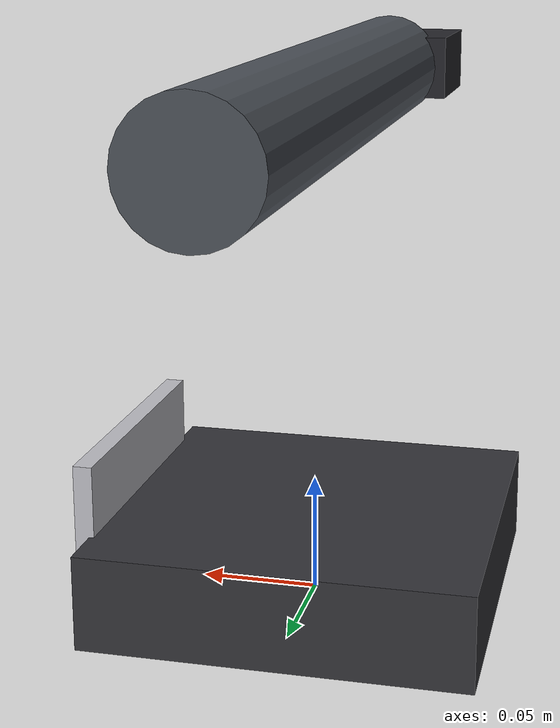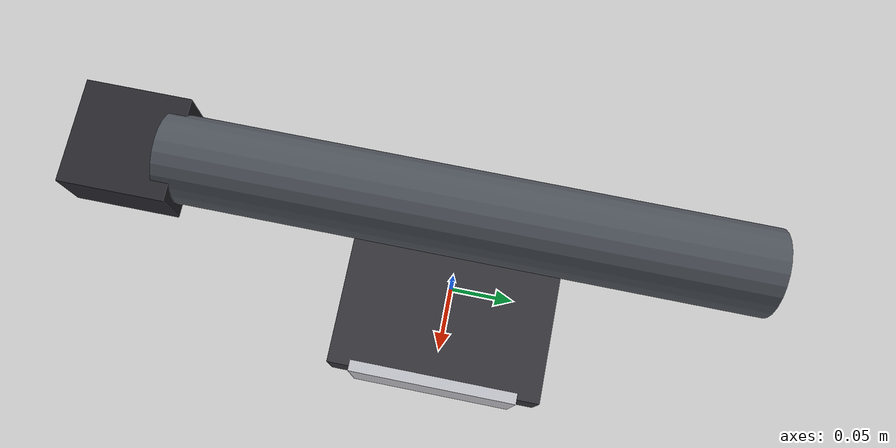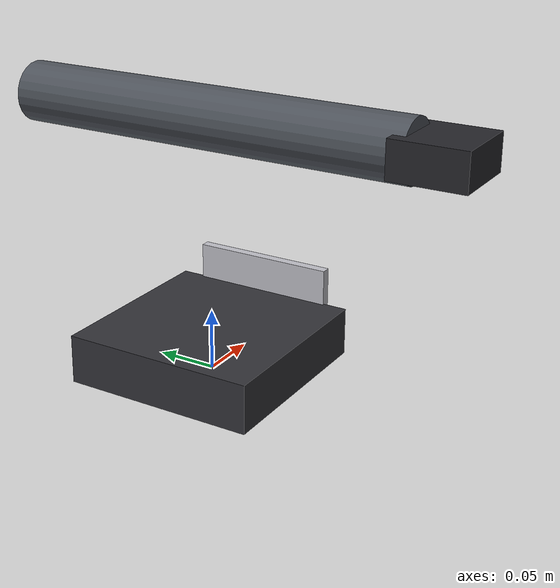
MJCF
<?xml version="1.0" encoding="utf-8"?>
<mujoco model="real_lab_gothenburg_university_maldi">
  <compiler angle="radian" autolimits="true"/>
  <default>
    <default class="body"><geom contype="1" conaffinity="1"/></default>
  </default>
  <worldbody>
    <body name="base">
      <geom type="box" size="0.08 0.08 0.02" pos="0 0 0.02" rgba="0.2 0.2 0.22 1" class="body"/>
      <geom type="cylinder" size="0.025 0.17" pos="0 0 0.21" rgba="0.3 0.32 0.35 1" class="body" quat="0.707 0.707 0 0"/>
      <geom type="box" size="0.03 0.03 0.015" pos="0 -0.19 0.21" rgba="0.15 0.15 0.17 1" class="body"/>
      <body name="sample_plate_door" pos="0.08 0.0 0.04">
        <joint name="sample_plate_door_joint" type="hinge" axis="0 0 1" range="0 1.3" damping="0.5" frictionloss="0.2"/>
  <geom type="box" size="0.004 0.06 0.03" pos="0.002 0 0" rgba="0.75 0.75 0.78 1" class="body"/>
      </body>
    </body>
  </worldbody>
</mujoco>
